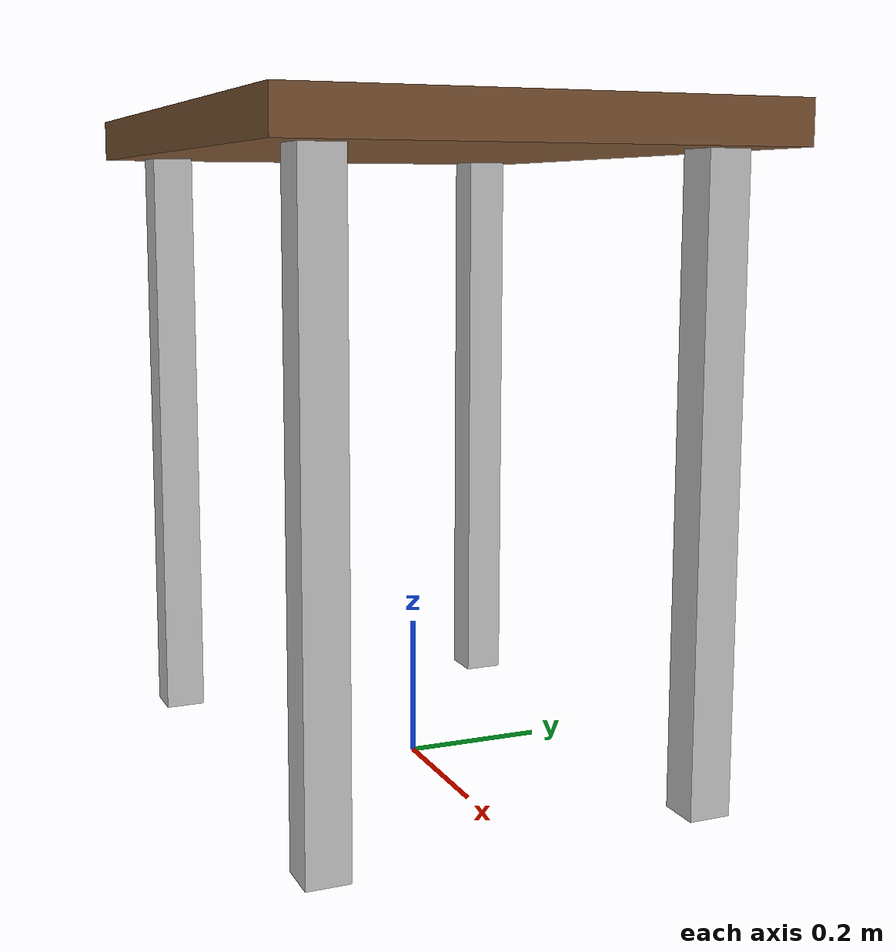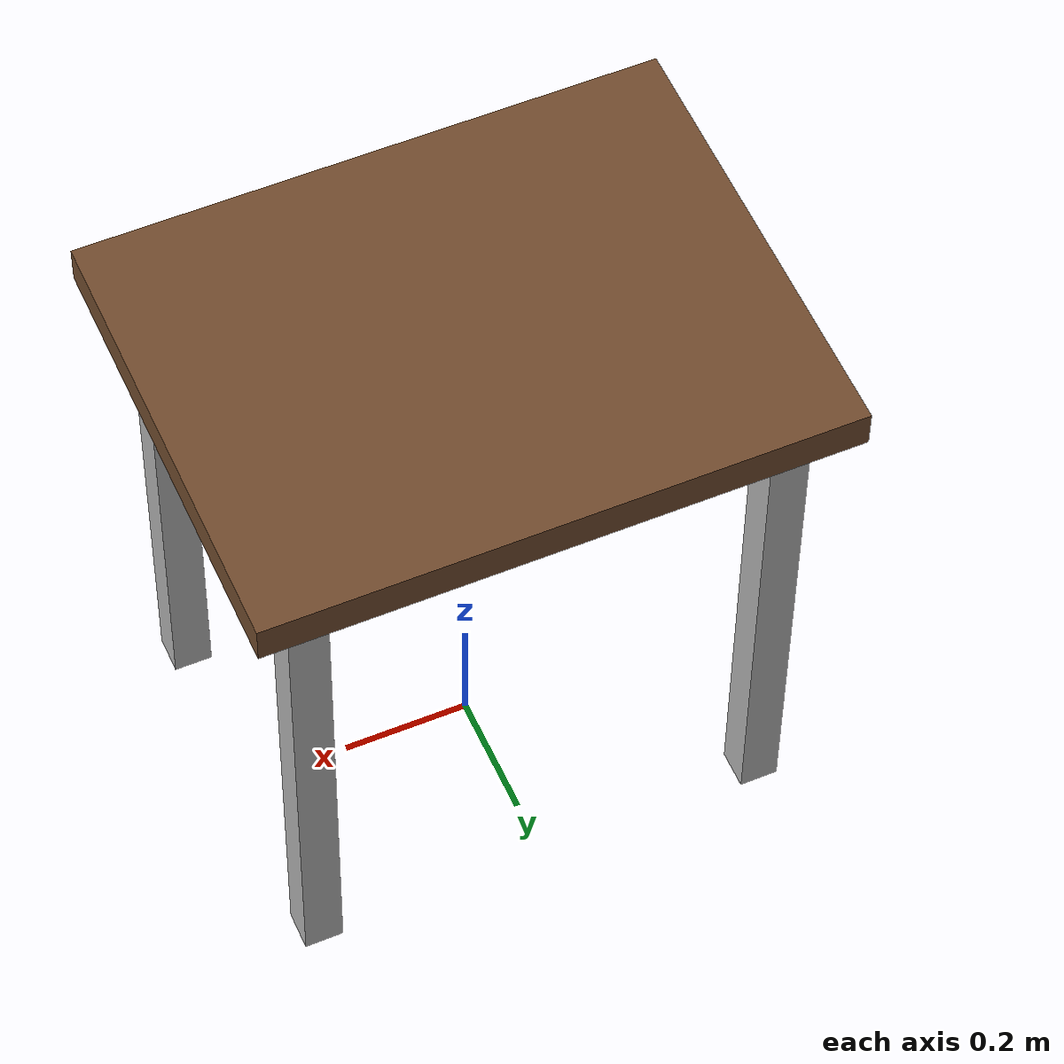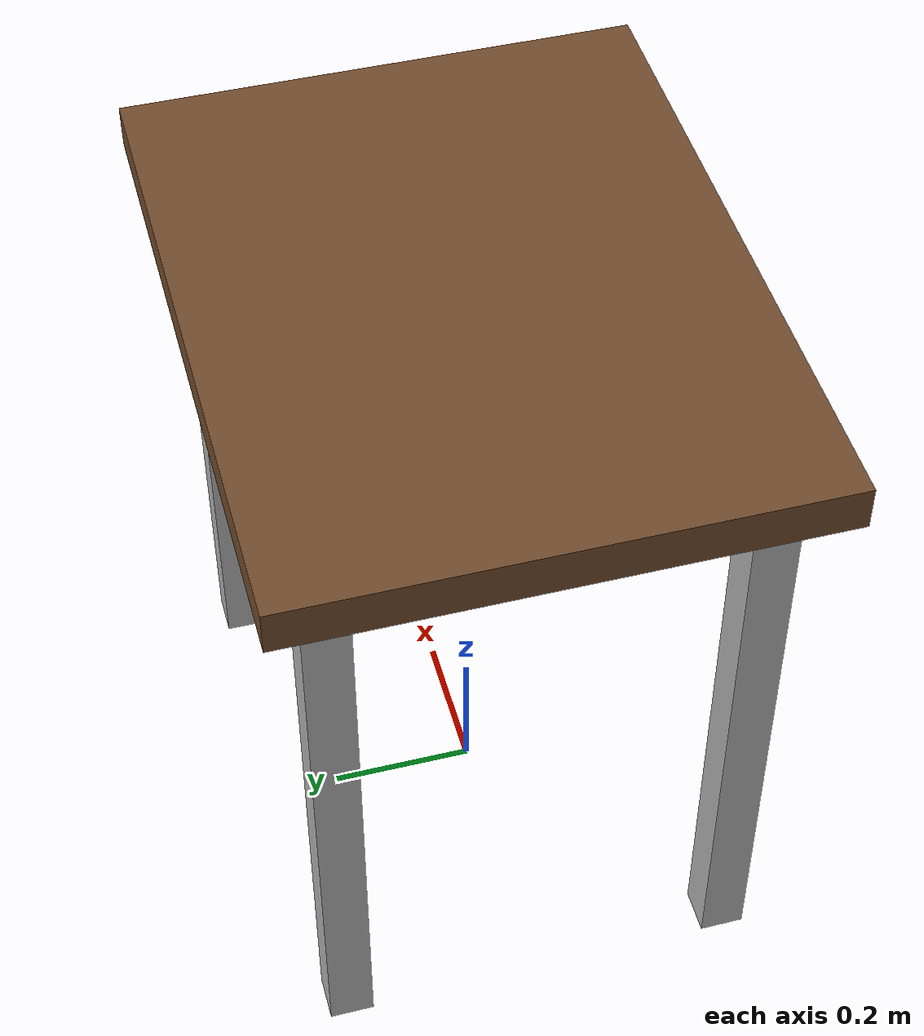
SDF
<?xml version="1.0"?>
<sdf version="1.6">
  <model name="reachable_table">
    <static>true</static>
    <link name="table">
      <collision name="top_collision">
        <pose>0 0 0.915 0 0 0</pose>
        <geometry><box><size>0.90 0.70 0.06</size></box></geometry>
      </collision>
      <visual name="top_visual">
        <pose>0 0 0.915 0 0 0</pose>
        <geometry><box><size>0.90 0.70 0.06</size></box></geometry>
        <material><ambient>0.35 0.24 0.14 1</ambient><diffuse>0.45 0.30 0.18 1</diffuse></material>
      </visual>
      <collision name="left_leg_collision">
        <pose>0.36 0.27 0.4425 0 0 0</pose>
        <geometry><box><size>0.06 0.06 0.885</size></box></geometry>
      </collision>
      <visual name="left_leg_visual">
        <pose>0.36 0.27 0.4425 0 0 0</pose>
        <geometry><box><size>0.06 0.06 0.885</size></box></geometry>
      </visual>
      <collision name="right_leg_collision">
        <pose>0.36 -0.27 0.4425 0 0 0</pose>
        <geometry><box><size>0.06 0.06 0.885</size></box></geometry>
      </collision>
      <visual name="right_leg_visual">
        <pose>0.36 -0.27 0.4425 0 0 0</pose>
        <geometry><box><size>0.06 0.06 0.885</size></box></geometry>
      </visual>
      <collision name="rear_left_leg_collision">
        <pose>-0.36 0.27 0.4425 0 0 0</pose>
        <geometry><box><size>0.06 0.06 0.885</size></box></geometry>
      </collision>
      <visual name="rear_left_leg_visual">
        <pose>-0.36 0.27 0.4425 0 0 0</pose>
        <geometry><box><size>0.06 0.06 0.885</size></box></geometry>
      </visual>
      <collision name="rear_right_leg_collision">
        <pose>-0.36 -0.27 0.4425 0 0 0</pose>
        <geometry><box><size>0.06 0.06 0.885</size></box></geometry>
      </collision>
      <visual name="rear_right_leg_visual">
        <pose>-0.36 -0.27 0.4425 0 0 0</pose>
        <geometry><box><size>0.06 0.06 0.885</size></box></geometry>
      </visual>
    </link>
  </model>
</sdf>
